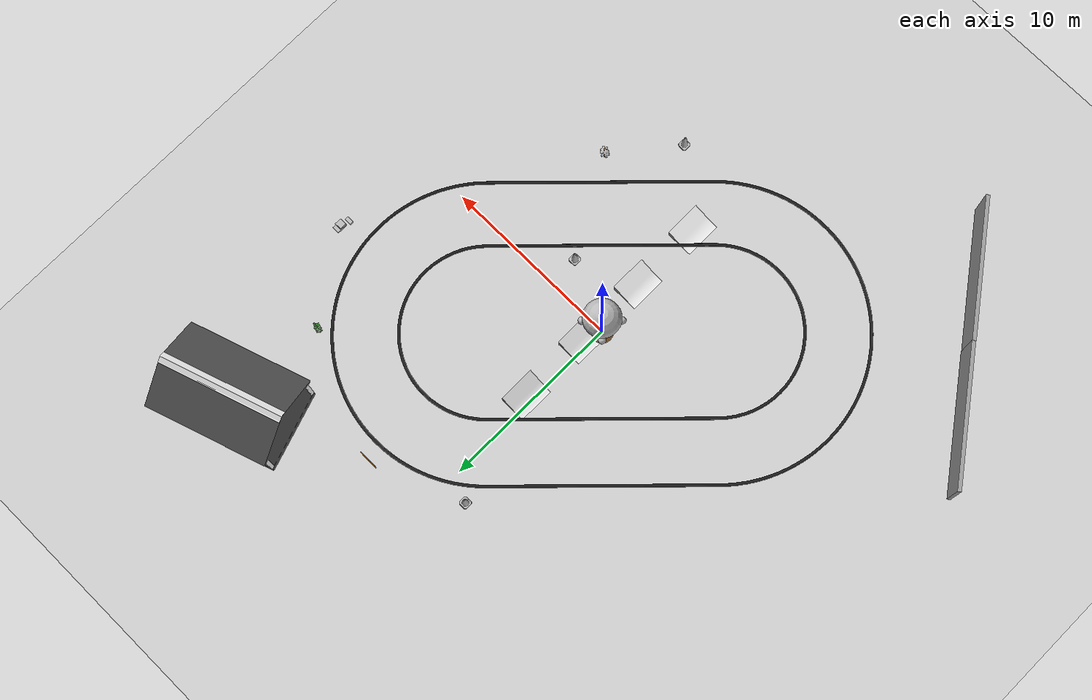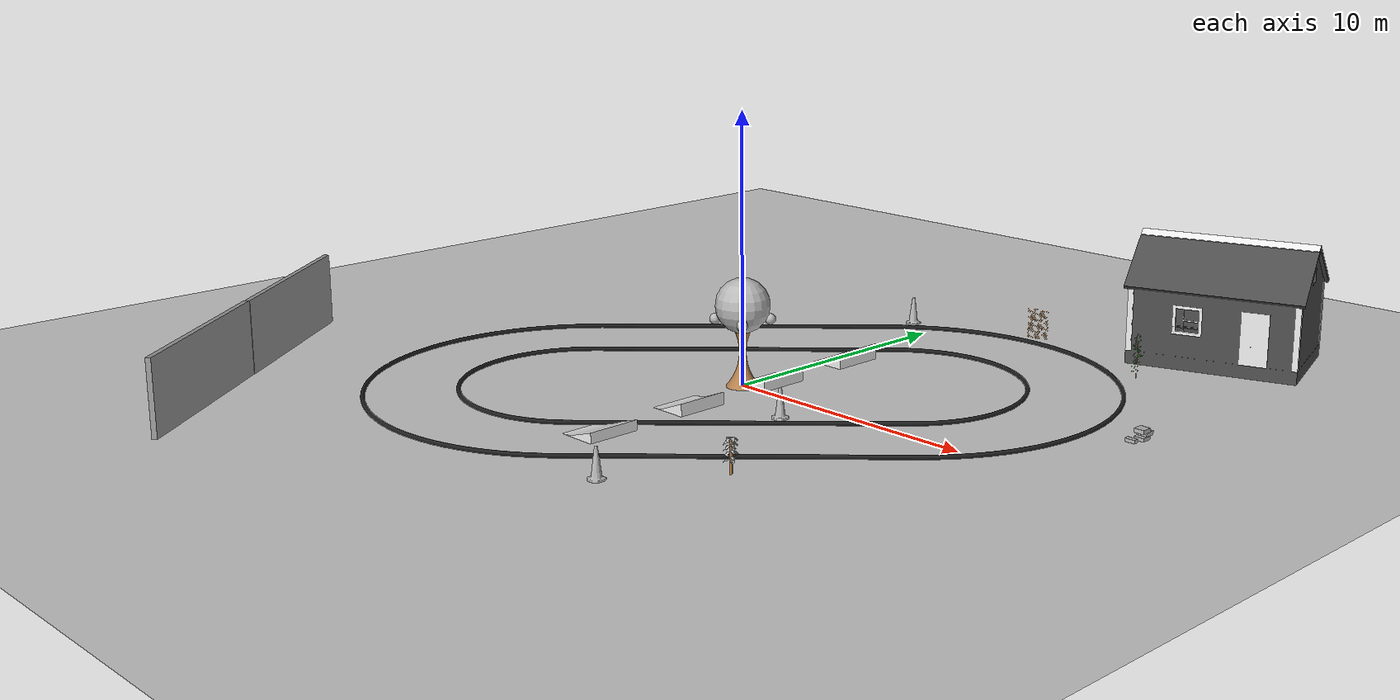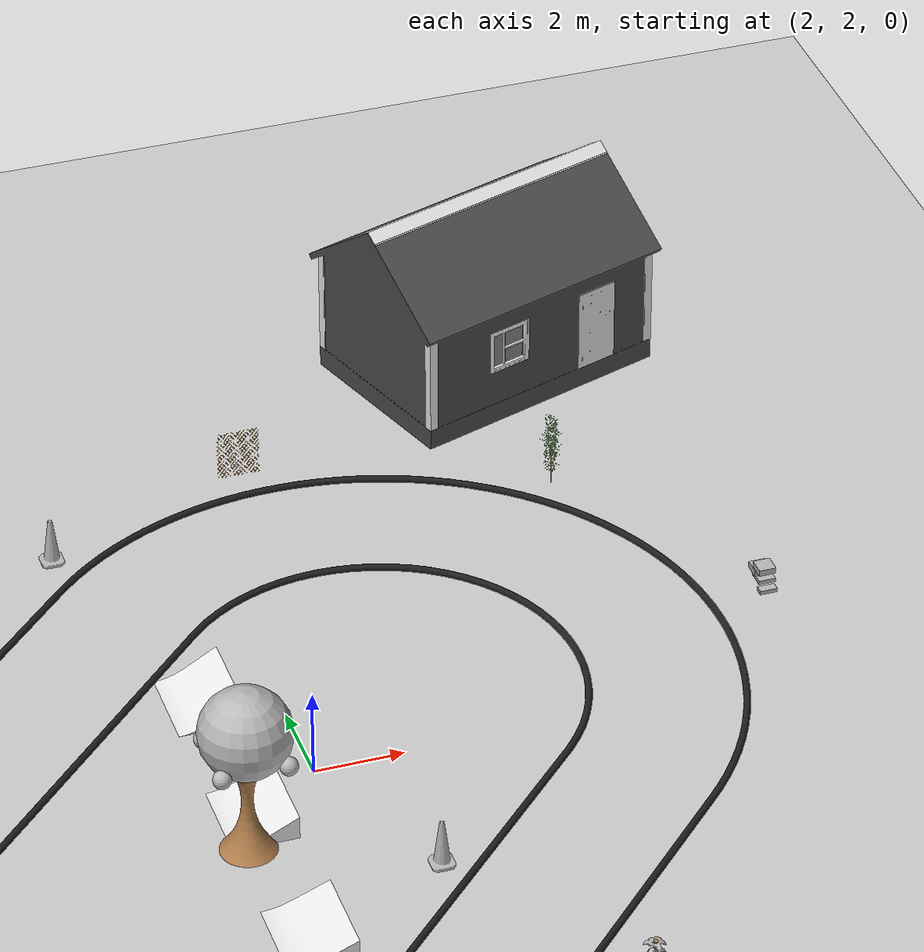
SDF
<sdf version="1.6">
 <world name="default">
  <scene>
   <sky><clouds><speed>12</speed></clouds></sky>
   <ambient>1.0 1.0 1.0 1.0</ambient>
   <shadows>true</shadows>
  </scene>
  <include><uri>model://urdf/models/sun</uri></include>
  <include><name>track</name><uri>model://urdf/models/track</uri><pose>0 0 0.0762 0 0 0.785398</pose></include>
  <include>
   <name>blended_plane</name>
   <uri>model://urdf/models/blended_track</uri>
   <pose>0 0 0 0 0 0.785398</pose>
  </include>
  <include><name>tree</name><uri>model://urdf/models/tree</uri></include>
  <include><name>bamboo</name><uri>model://urdf/models/bamboo</uri><pose>10 10 0 0 0 0</pose></include>
  <include><name>bush</name><uri>model://urdf/models/bush</uri><pose>6.4 -6.67 0.6 0 0 0</pose></include>
  <include><name>fence</name><uri>model://urdf/models/fence</uri><pose>3.1 12.8 0 0 0 0</pose></include>
  <include><name>shed</name><uri>model://urdf/models/shed</uri><pose>14.1 14.4 0 0 0 1.89</pose></include>
  <include>
   <static>true</static>
   <name>grey_wall_1</name>
   <uri>model://grey_wall</uri>
   <pose>-11.428 -15 0 0 0 -0.9276</pose>
  </include>
  <include>
   <static>true</static>
   <name>grey_wall_2</name>
   <uri>model://grey_wall</uri>
   <pose>-15.9 -9 0 0 0 -0.9276</pose>
  </include>
  <include>
   <static>true</static>
   <name>cone_1</name>
   <uri>model://construction_cone</uri>
   <pose>3.9 -10 0 0 0 0</pose>
  </include>
  <include>
   <static>true</static>
   <name>cone_2</name>
   <uri>model://construction_cone</uri>
   <pose>3.6 -1.7 0 0 0 0</pose>
  </include>
  <include>
   <static>true</static>
   <name>cone_3</name>
   <uri>model://construction_cone</uri>
   <pose>-1.3 10.9 0 0 0 0</pose>
  </include>
  <include>
   <static>true</static>
   <name>cinder_block_2_1</name>
   <uri>model://cinder_block_2</uri>
   <pose>13.249 4.946 0 0 0 0</pose>
  </include>
  <include>
   <static>true</static>
   <name>cinder_block_wide_1</name>
   <uri>model://cinder_block_wide</uri>
   <pose>13.35 5.4 0 0 0 0</pose>
  </include>
  <include>
   <static>true</static>
   <name>cinder_block_wide_2</name>
   <uri>model://cinder_block_wide</uri>
   <pose>13.33 5.6 0.14 0 0 0</pose>
  </include>
  <include>
   <static>true</static>
   <name>cinder_block_wide_3</name>
   <uri>model://cinder_block_wide</uri>
   <pose>13.35 5.4 0.28 0 0 0</pose>
  </include>
  <include>
   <static>true</static>
   <name>18degjump</name>
   <uri>model://urdf/models/jump18deg</uri>
   <pose>0 -8 0 0 0 0</pose>
  </include>
  <include>
   <static>true</static>
   <name>22degjump</name>
   <uri>model://urdf/models/jump22deg</uri>
   <pose>0 -4 0 0 0 0</pose>
  </include>
  <include><static>true</static><name>26degjump</name><uri>model://urdf/models/jump26deg</uri></include>
  <include>
   <static>true</static>
   <name>30degjump</name>
   <uri>model://urdf/models/jump30deg</uri>
   <pose>0 4 0 0 0 0</pose>
  </include>
 </world>
</sdf>

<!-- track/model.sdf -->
<sdf version="1.5">
  <model name="track">
    <static>true</static>
    <link name="link">
      <collision name="collision">
        <geometry>
          <mesh>
            <uri>model://urdf/cad/autoRallyTrack.dae</uri>
            <scale>1.0 1.0 1.0</scale>
          </mesh>
        </geometry>
        <surface>
          <friction>
            <ode>
              <mu>100</mu>
              <mu2>50</mu2>
            </ode>
          </friction>
        </surface>
      </collision>
      <visual name="visual">
        <cast_shadows>false</cast_shadows>
        <geometry>
          <mesh>
            <uri>model://urdf/cad/autoRallyTrack.dae</uri>
            <scale>1.0 1.0 1.0</scale>
          </mesh>
        </geometry>
        <material>
          <script>
            <uri>model://urdf/gazebo.material</uri>
            <name>Gazebo/Black</name>
          </script>
        </material>
      </visual>
    </link>
  </model>
</sdf>

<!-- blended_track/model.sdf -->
<sdf version="1.5">
  <model name="dirt_plane">
    <static>true</static>
    <link name="link">
      <collision name="collision">
        <geometry>
          <plane>
            <normal>0 0 1</normal>
            <size>90 90</size>
          </plane>
        </geometry>
        <surface>
          <friction>
            <ode>
              <mu>100</mu>
              <mu2>50</mu2>
            </ode>
          </friction>
        </surface>
      </collision>
      <visual name="visual">
        <cast_shadows>false</cast_shadows>
        <geometry>
          <plane>
            <normal>0 0 1</normal>
            <size>90 90</size>
          </plane>
        </geometry>
        <material>
          <script>
            <uri>model://urdf/gazebo.material</uri>
            <name>Gazebo/Texture_blend</name>
          </script>
        </material>
      </visual>
    </link>
  </model>
</sdf>

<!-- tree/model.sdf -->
<sdf version="1.5">
  <model name="tree">
    <static>true</static>
    <link name="trunk">
      <collision name="collision">
        <geometry>
          <mesh>
            <uri>model://urdf/cad/tree.dae</uri>
            <scale>1 1 1</scale>
          </mesh>
        </geometry>
        <surface>
          <friction>
            <ode>
              <mu>100</mu>
              <mu2>50</mu2>
            </ode>
          </friction>
        </surface>
      </collision>
      <visual name="visual">
        <cast_shadows>false</cast_shadows>
        <geometry>
          <mesh>
            <uri>model://urdf/cad/tree.dae</uri>
            <scale>1 1 1</scale>
          </mesh>
        </geometry>
        <material>
          <script>
            <uri>file://media/materials/scripts/gazebo.material</uri>
            <name>Gazebo/WoodPallet</name>
          </script>
        </material>
      </visual>
    </link>
    <link name="center_ball">
      <pose frame=''>0 0 3 0 -0 0</pose>
      <collision name="collision">
        <geometry>
          <sphere>
            <radius>1.0</radius>
          </sphere>
        </geometry>
        <surface>
          <friction>
            <ode>
              <mu>100</mu>
              <mu2>50</mu2>
            </ode>
          </friction>
        </surface>
      </collision>
      <visual name="visual">
        <cast_shadows>false</cast_shadows>
        <geometry>
          <sphere>
            <radius>1.0</radius>
          </sphere>
        </geometry>
        <material>
          <script>
            <uri>model://urdf/gazebo.material</uri>
            <name>Gazebo/Leaf_image</name>
          </script>
        </material>
      </visual>
    </link>
    <link name="ball_1">
      <pose frame=''>0.7 0.7 2.5 0 -0 0</pose>
      <collision name="collision">
        <geometry>
          <sphere>
            <radius>0.2</radius>
          </sphere>
        </geometry>
        <surface>
          <friction>
            <ode>
              <mu>100</mu>
              <mu2>50</mu2>
            </ode>
          </friction>
        </surface>
      </collision>
      <visual name="visual">
        <cast_shadows>false</cast_shadows>
        <geometry>
          <sphere>
            <radius>0.2</radius>
          </sphere>
        </geometry>
        <material>
          <script>
            <uri>model://urdf/gazebo.material</uri>
            <name>Gazebo/Leaf_image</name>
          </script>
        </material>
      </visual>
    </link>
    <link name="ball_2">
      <pose frame=''>-0.7 -0.7 2.5 0 -0 0</pose>
      <collision name="collision">
        <geometry>
          <sphere>
            <radius>0.2</radius>
          </sphere>
        </geometry>
        <surface>
          <friction>
            <ode>
              <mu>100</mu>
              <mu2>50</mu2>
            </ode>
          </friction>
        </surface>
      </collision>
      <visual name="visual">
        <cast_shadows>false</cast_shadows>
        <geometry>
          <sphere>
            <radius>0.2</radius>
          </sphere>
        </geometry>
        <material>
          <script>
            <uri>model://urdf/gazebo.material</uri>
            <name>Gazebo/Leaf_image</name>
          </script>
        </material>
      </visual>
    </link>
    <link name="ball_3">
      <pose frame=''>-0.7 0.7 2.5 0 -0 0</pose>
      <collision name="collision">
        <geometry>
          <sphere>
            <radius>0.2</radius>
          </sphere>
        </geometry>
        <surface>
          <friction>
            <ode>
              <mu>100</mu>
              <mu2>50</mu2>
            </ode>
          </friction>
        </surface>
      </collision>
      <visual name="visual">
        <cast_shadows>false</cast_shadows>
        <geometry>
          <sphere>
            <radius>0.2</radius>
          </sphere>
        </geometry>
        <material>
          <script>
            <uri>model://urdf/gazebo.material</uri>
            <name>Gazebo/Leaf_image</name>
          </script>
        </material>
      </visual>
    </link>
    <link name="ball_4">
      <pose frame=''>0.7 -0.7 2.5 0 -0 0</pose>
      <collision name="collision">
        <geometry>
          <sphere>
            <radius>0.2</radius>
          </sphere>
        </geometry>
        <surface>
          <friction>
            <ode>
              <mu>100</mu>
              <mu2>50</mu2>
            </ode>
          </friction>
        </surface>
      </collision>
      <visual name="visual">
        <cast_shadows>false</cast_shadows>
        <geometry>
          <sphere>
            <radius>0.2</radius>
          </sphere>
        </geometry>
        <material>
          <script>
            <uri>model://urdf/gazebo.material</uri>
            <name>Gazebo/Leaf_image</name>
          </script>
        </material>
      </visual>
    </link>
  </model>
</sdf>

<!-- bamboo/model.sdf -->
<sdf version="1.5">
  <model name="tree">
    <static>true</static>
    <link name="link">
      <pose frame=''>0 0 0 0 -0 0</pose>
      <collision name="collision">
        <geometry>
          <mesh>
            <uri>model://urdf/cad/bamboo_leaves.dae</uri>
            <scale>1 1 1</scale>
          </mesh>
        </geometry>
        <surface>
          <friction>
            <ode>
              <mu>100</mu>
              <mu2>50</mu2>
            </ode>
          </friction>
        </surface>
      </collision>
      <visual name="visual">
        <cast_shadows>false</cast_shadows>
        <geometry>
          <mesh>
            <uri>model://urdf/cad/bamboo_leaves.dae</uri>
            <scale>1 1 1</scale>
          </mesh>
        </geometry>
        <material>
          <script>
            <uri>model://urdf/gazebo.material</uri>
            <name>Gazebo/Grass_image</name>
          </script>
        </material>
      </visual>
    </link>
    <link name="stem">
      <collision name="collision">
        <geometry>
          <cylinder>
            <radius>0.05</radius>
            <length>1.2</length>
          </cylinder>
        </geometry>
        <surface>
          <friction>
            <ode>
              <mu>100</mu>
              <mu2>50</mu2>
            </ode>
          </friction>
        </surface>
      </collision>
      <visual name="visual">
        <cast_shadows>false</cast_shadows>
        <geometry>
          <cylinder>
            <radius>0.005</radius>
            <length>4.0</length>
          </cylinder>
        </geometry>
        <material>
          <script>
            <uri>file://media/materials/scripts/gazebo.material</uri>
            <name>Gazebo/Wood</name>
          </script>
        </material>
      </visual>
    </link>
  </model>
</sdf>

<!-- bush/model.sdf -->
<sdf version="1.5">
  <model name="bush">
    <static>true</static>
    <link name="link">
      <pose frame=''>-0.439275 0.4 0.1 0 -0 0</pose>
      <collision name="collision">
        <geometry>
          <mesh>
            <uri>model://urdf/cad/bush.dae</uri>
            <scale>1 1 1</scale>
          </mesh>
        </geometry>
        <surface>
          <friction>
            <ode>
              <mu>100</mu>
              <mu2>50</mu2>
            </ode>
          </friction>
        </surface>
      </collision>
      <visual name="visual">
        <cast_shadows>false</cast_shadows>
        <geometry>
          <mesh>
            <uri>model://urdf/cad/bush.dae</uri>
            <scale>1 1 1</scale>
          </mesh>
        </geometry>
        <material>
          <script>
            <uri>model://urdf/gazebo.material</uri>
            <name>Gazebo/Bamboo_image</name>
          </script>
        </material>
      </visual>
    </link>
    <link name="stem">
      <collision name="collision">
        <geometry>
          <cylinder>
            <radius>0.05</radius>
            <length>1.2</length>
          </cylinder>
        </geometry>
        <surface>
          <friction>
            <ode>
              <mu>100</mu>
              <mu2>50</mu2>
            </ode>
          </friction>
        </surface>
      </collision>
      <visual name="visual">
        <cast_shadows>false</cast_shadows>
        <geometry>
          <cylinder>
            <radius>0.05</radius>
            <length>1.2</length>
          </cylinder>
        </geometry>
        <material>
          <script>
            <uri>file://media/materials/scripts/gazebo.material</uri>
            <name>Gazebo/Wood</name>
          </script>
        </material>
      </visual>
    </link>
  </model>
</sdf>

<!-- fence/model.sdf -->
<sdf version="1.5">
  <model name="tree">
    <static>true</static>
    <link name="link">
      <collision name="collision">
        <geometry>
          <mesh>
            <uri>model://urdf/cad/fence.dae</uri>
            <scale>1 1 1</scale>
          </mesh>
        </geometry>
        <surface>
          <friction>
            <ode>
              <mu>100</mu>
              <mu2>50</mu2>
            </ode>
          </friction>
        </surface>
      </collision>
      <visual name="visual">
        <cast_shadows>false</cast_shadows>
        <geometry>
          <mesh>
            <uri>model://urdf/cad/fence.dae</uri>
            <scale>1 1 1</scale>
          </mesh>
        </geometry>
        <material>
          <script>
            <uri>model://urdf/gazebo.material</uri>
            <name>Gazebo/Construction_orange</name>
          </script>
        </material>
      </visual>
    </link>
  </model>
</sdf>

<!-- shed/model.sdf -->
<sdf version="1.5">
  <model name="shed">
    <static>true</static>
    <link name="walls">
      <collision name="collision">
        <geometry>
          <mesh>
            <uri>model://urdf/cad/shed_outer.dae</uri>
            <scale>1 1 1</scale>
          </mesh>
        </geometry>
        <surface>
          <friction>
            <ode>
              <mu>100</mu>
              <mu2>50</mu2>
            </ode>
          </friction>
        </surface>
      </collision>
      <visual name="visual">
        <cast_shadows>false</cast_shadows>
        <geometry>
          <mesh>
            <uri>model://urdf/cad/shed_outer.dae</uri>
            <scale>1 1 1</scale>
          </mesh>
        </geometry>
        <material>
          <script>
            <uri>model://urdf/gazebo.material</uri>
            <name>Gazebo/DarkGrey</name>
          </script>
        </material>
      </visual>
    </link>
    <link name="edges">
      <pose frame=''>0 0 0 0 -0 0</pose>
      <collision name="collision">
        <geometry>
          <mesh>
            <uri>model://urdf/cad/shed_edges.dae</uri>
            <scale>1 1 1</scale>
          </mesh>
        </geometry>
        <surface>
          <friction>
            <ode>
              <mu>100</mu>
              <mu2>50</mu2>
            </ode>
          </friction>
        </surface>
      </collision>
      <visual name="visual">
        <cast_shadows>false</cast_shadows>
        <geometry>
          <mesh>
            <uri>model://urdf/cad/shed_edges.dae</uri>
            <scale>1 1 1</scale>
          </mesh>
        </geometry>
        <material>
          <script>
            <uri>model://urdf/gazebo.material</uri>
            <name>Gazebo/White</name>
          </script>
        </material>
      </visual>
    </link>
  </model>
</sdf>

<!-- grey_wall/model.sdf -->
<sdf version="1.5">
  <model name="grey_wall">
    <static>true</static>
    <link name="link">
      <pose>0 0 1.4 0 0 0</pose>
      <collision name="collision">
        <geometry>
          <box>
            <size>7.5 0.2 2.8</size>
          </box>
        </geometry>
      </collision>
      <visual name="visual">
        <cast_shadows>false</cast_shadows>
        <geometry>
          <box>
            <size>7.5 0.2 2.8</size>
          </box>
        </geometry>
        <material>
          <script>
            <uri>model://../model_source/models/grey_wall/materials/scripts</uri>
            <uri>model://../model_source/models/grey_wall/materials/textures</uri>
            <name>vrc/grey_wall</name>
          </script>
        </material>
      </visual>
    </link>
  </model>
</sdf>

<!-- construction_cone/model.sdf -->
<sdf version="1.5">
  <model name="Construction Cone">
    <link name="link">
      <collision name="collision">
        <geometry>
          <mesh>
            <scale>10 10 10</scale>
            <uri>file://isr-testbed/construction_cone/meshes/construction_cone.dae</uri>
          </mesh>
        </geometry>
      </collision>
      <visual name="visual">
        <geometry>
          <mesh>
            <scale>10 10 10</scale>
            <uri>file://isr-testbed/construction_cone/meshes/construction_cone.dae</uri>
          </mesh>
        </geometry>
      </visual>
    </link>
  </model>
</sdf>

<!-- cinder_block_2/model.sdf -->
<sdf version="1.5">
  <model name="cinder_block_2">
    <link name="link">
      <inertial>
        <pose>0 0 0.07 0 0 0</pose>
        <!-- volume about 0.0085 m^3, density 2000 kg/m^3 -->
        <mass>5</mass>
        <!-- approximate as uniform box 0.37 x 0.17 x 0.20 m -->
        <inertia>
          <ixx>0.06908</ixx>
          <ixy>0.0000</ixy>
          <iyy>0.028705</iyy>
          <ixz>0.0000</ixz>
          <iyz>0.0000</iyz>
          <izz>0.073708</izz>
        </inertia>
      </inertial>
      <visual name="visual">
        <geometry>
	  <box>
		<size>0.396875 0.19368008 0.146</size>
	  </box>
        </geometry>
      </visual>
      <collision name="collision_box">
        <pose>0 0 0 0 0 0</pose>
        <geometry>
          <box>
            <size>0.396875 0.19368008 0.146</size>
          </box>
        </geometry>
        <surface>
          <contact>
            <ode>
              <max_vel>0.1</max_vel>
              <min_depth>0.001</min_depth>
            </ode>
          </contact>
          <friction>
            <ode>
              <mu>1.0</mu>
              <mu2>1.0</mu2>
            </ode>
          </friction>
        </surface>
      </collision>
    </link>
  </model>
</sdf>

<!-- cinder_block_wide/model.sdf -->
<sdf version="1.5">
  <model name="cinder_block_wide">
    <link name="link">
      <inertial>
        <pose>0 0  0.146 0 0 0</pose>
        <mass>5</mass>
        <!-- approximate as uniform box 0.387 x 0.387 x 0.092 m -->
        <inertia>
          <ixx>0.06814656666666667</ixx>
          <ixy>0.0000</ixy>
          <iyy>0.06814656666666667</iyy>
          <ixz>0.0000</ixz>
          <iyz>0.0000</iyz>
          <izz>0.1248075</izz>
        </inertia>
      </inertial>
      <visual name="visual">
        <geometry>

          <box>
            <size>0.387353556 0.387353556 0.146</size>
          </box>
        </geometry>
      </visual>

      <collision name="block_collision">
       <pose>0 0 0 0 0 0</pose>
        <geometry>
          <box>
            <size>0.387353556 0.387353556 0.146</size>
          </box>
        </geometry>
        <surface>
          <contact>
            <ode>
              <max_vel>0.1</max_vel>
              <min_depth>0.001</min_depth>
            </ode>
          </contact>
          <friction>
            <ode>
              <mu>1.0</mu>
              <mu2>1.0</mu2>
            </ode>
          </friction>
        </surface>

      </collision>

    </link>
  </model>
</sdf>

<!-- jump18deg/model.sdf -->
<sdf version="1.5">
  <model name="jump18deg">
    <static>true</static>
    <link name="link">
      <collision name="collision">
        <geometry>
          <mesh>
            <uri>model://urdf/cad/jump18deg.dae</uri>
            <scale>1 1 1</scale>
          </mesh>
        </geometry>
        <surface>
          <friction>
            <ode>
              <mu>100</mu>
              <mu2>50</mu2>
            </ode>
          </friction>
        </surface>
      </collision>
      <visual name="visual">
        <cast_shadows>false</cast_shadows>
        <geometry>
          <mesh>
            <uri>model://urdf/cad/jump18deg.dae</uri>
            <scale>1 1 1</scale>
          </mesh>
        </geometry>
        <material>
          <script>
            <uri>model://urdf/gazebo.material</uri>
            <name>Gazebo/White</name>
          </script>
        </material>
      </visual>
    </link>
  </model>
</sdf>

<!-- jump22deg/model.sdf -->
<sdf version="1.5">
  <model name="jump22deg">
    <static>true</static>
    <link name="link">
      <collision name="collision">
        <geometry>
          <mesh>
            <uri>model://urdf/jump22deg.dae</uri>
            <scale>1 1 1</scale>
          </mesh>
        </geometry>
        <surface>
          <friction>
            <ode>
              <mu>100</mu>
              <mu2>50</mu2>
            </ode>
          </friction>
        </surface>
      </collision>
      <visual name="visual">
        <cast_shadows>false</cast_shadows>
        <geometry>
          <mesh>
            <uri>model://urdf/cad/jump22deg.dae</uri>
            <scale>1 1 1</scale>
          </mesh>
        </geometry>
        <material>
          <script>
            <uri>model://urdf/cad/gazebo.material</uri>
            <name>Gazebo/White</name>
          </script>
        </material>
      </visual>
    </link>
  </model>
</sdf>

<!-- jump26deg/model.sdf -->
<sdf version="1.5">
  <model name="jump26deg">
    <static>true</static>
    <link name="link">
      <collision name="collision">
        <geometry>
          <mesh>
            <uri>model://urdf/cad/jump26deg.dae</uri>
            <scale>1 1 1</scale>
          </mesh>
        </geometry>
        <surface>
          <friction>
            <ode>
              <mu>100</mu>
              <mu2>50</mu2>
            </ode>
          </friction>
        </surface>
      </collision>
      <visual name="visual">
        <cast_shadows>false</cast_shadows>
        <geometry>
          <mesh>
            <uri>model://urdf/cad/jump26deg.dae</uri>
            <scale>1 1 1</scale>
          </mesh>
        </geometry>
        <material>
          <script>
            <uri>model://urdf/gazebo.material</uri>
            <name>Gazebo/White</name>
          </script>
        </material>
      </visual>
    </link>
  </model>
</sdf>

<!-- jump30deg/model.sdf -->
<sdf version="1.5">
  <model name="jump30deg">
    <static>true</static>
    <link name="link">
      <collision name="collision">
        <geometry>
          <mesh>
            <uri>model://urdf/cad/jump30deg.dae</uri>
            <scale>1 1 1</scale>
          </mesh>
        </geometry>
        <surface>
          <friction>
            <ode>
              <mu>100</mu>
              <mu2>50</mu2>
            </ode>
          </friction>
        </surface>
      </collision>
      <visual name="visual">
        <cast_shadows>false</cast_shadows>
        <geometry>
          <mesh>
            <uri>model://urdf/cad/jump30deg.dae</uri>
            <scale>1 1 1</scale>
          </mesh>
        </geometry>
        <material>
          <script>
            <uri>model://urdf/gazebo.material</uri>
            <name>Gazebo/White</name>
          </script>
        </material>
      </visual>
    </link>
  </model>
</sdf>
